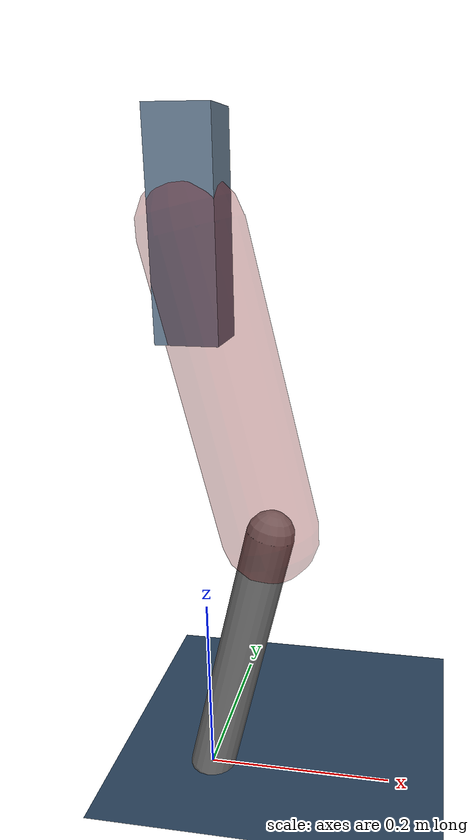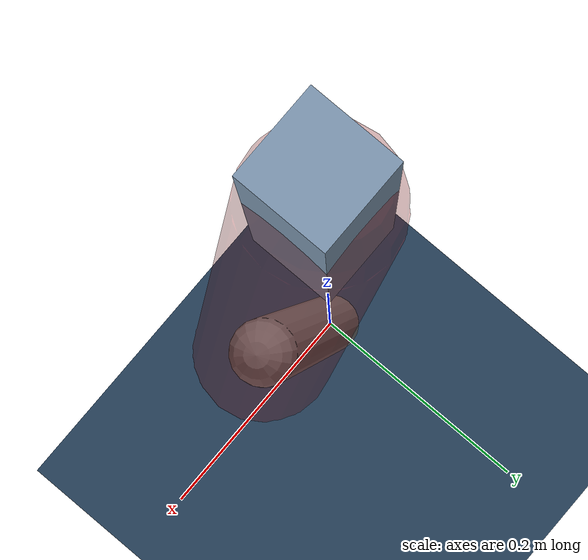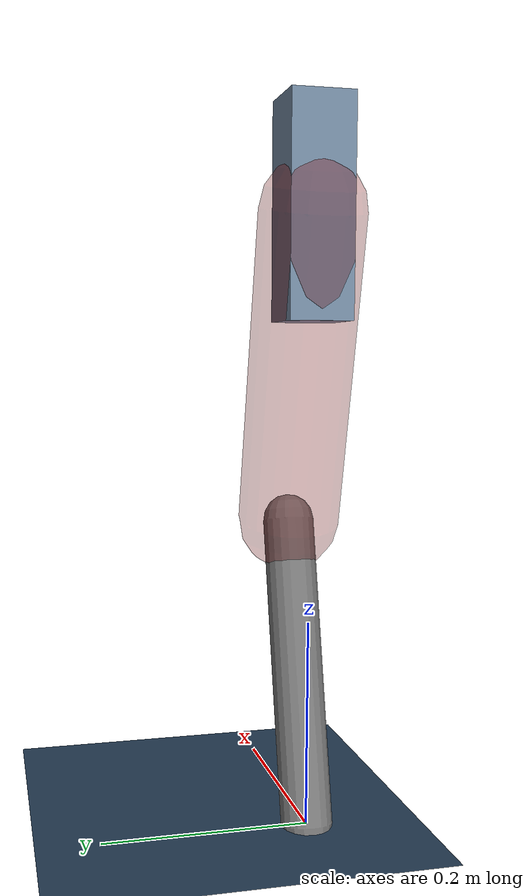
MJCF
<mujoco model="Hopper2D">
	<compiler inertiafromgeom="true" angle="radian" />
	<option timestep="0.001" integrator="implicit" cone="elliptic" solver="Newton" tolerance="1e-10" />

	<default>
		<geom contype="1" conaffinity="1" condim="3" friction="2 0.005 0.0001" solref="0.005 1" />
		<joint limited="true" damping="0.1" />
	</default>

	<asset>
		<texture name="skybox" type="skybox" builtin="gradient" rgb1=".4 .6 .8" rgb2="0 0 0" width="800" height="800" />
		<texture name="grid" type="2d" builtin="checker" rgb1=".1 .2 .3" rgb2=".2 .3 .4" width="300" height="300" mark="edge" markrgb=".2 .3 .4" />
		<material name="ground" texture="grid" texrepeat="1 1" texuniform="true" reflectance="0.1" />
		<material name="leg" rgba="0.5 0.6 0.7 1" />
	</asset>

	<worldbody>

		<geom name="floor" type="plane" size="5 5 0.25" material="ground" />

		<light directional="false" diffuse="0.8 0.8 0.8" specular="0.3 0.3 0.3" pos="0 0 2" dir="0 0 -1" />
		<light mode="targetbodycom" target="base" directional="false" diffuse="0.8 0.8 0.8" specular="0.3 0.3 0.3" pos="0 0 2" dir="0 0 -1" />

		<camera name="fixed" pos="0 -2 1" xyaxes="1 0 0 0 0 1" />
		<camera name="tracking" mode="trackcom" pos="0 -3 1" />

		<body name="root" pos="0 0 0.5833883117425553">
			<joint name="slide_x" type="slide" axis="1 0 0" range="-100 100" />
			<joint name="slide_z" type="slide" axis="0 0 1" range="0 10" />

			<body name="base" pos="0 0 0">
				<geom name="torso" type="box" size="0.03 0.03 0.1" mass="4.939" material="leg" />

				<body name="link1" pos="0 0 0" euler="0 1.3374597167547708 0">
					<joint type="hinge" axis="0 -1 0" pos="0 0 0" name="hinge1" limited="true" range="-3.14 3.14" stiffness="0" damping="0.1" />
					<geom name="thigh" type="capsule" fromto="0 0 0 0.3019061229723119 0 0" size="0.05" rgba="0.5 0 0 0.3" mass="0.9938465320252421" />

					<body name="link2" pos="0.3019061229723119 0 0" euler="0 0.4698245537500977 0">
						<joint type="hinge" axis="0 -1 0" pos="0 0 0" name="hinge2" limited="true" range="-3.14 3.14" stiffness="0" damping="0.1" />
						<geom name="shank" type="capsule" fromto="0 0 0 0.29795684291642793 0 0" size="0.025" mass="0.4817654743331424" />

					</body>
				</body>
			</body>
		</body>
	</worldbody>

	<actuator>
		<motor name="torque1" joint="hinge1" ctrlrange="-351.01334221943466 351.01334221943466" ctrllimited="true" gear="1" />
		<motor name="torque2" joint="hinge2" ctrlrange="-101.7776888184307 101.7776888184307" ctrllimited="true" gear="1" />
	</actuator>
</mujoco>
